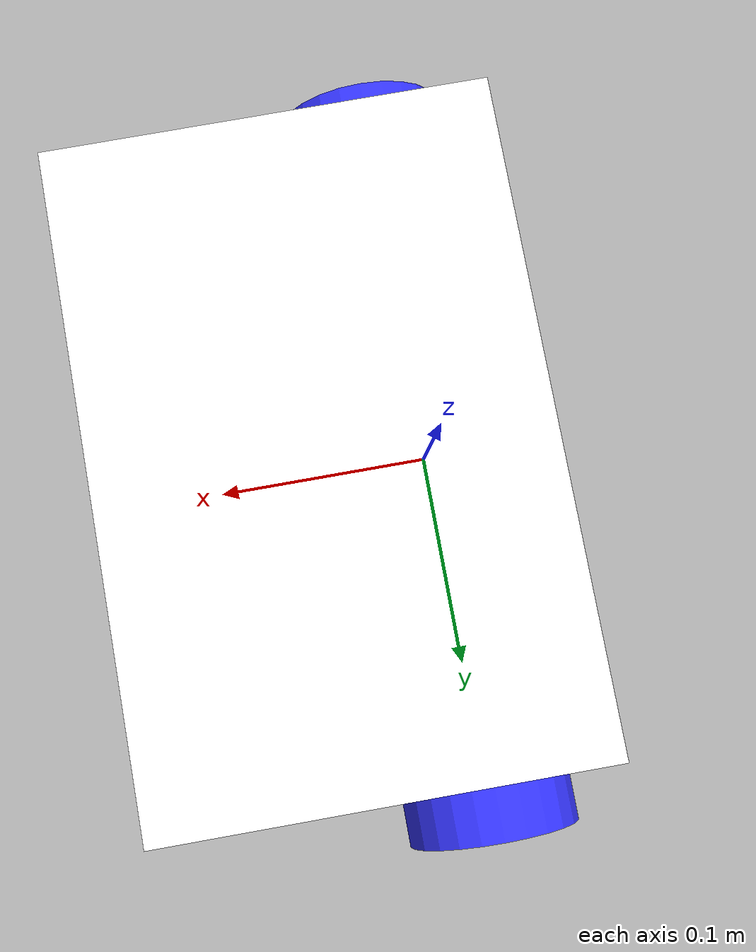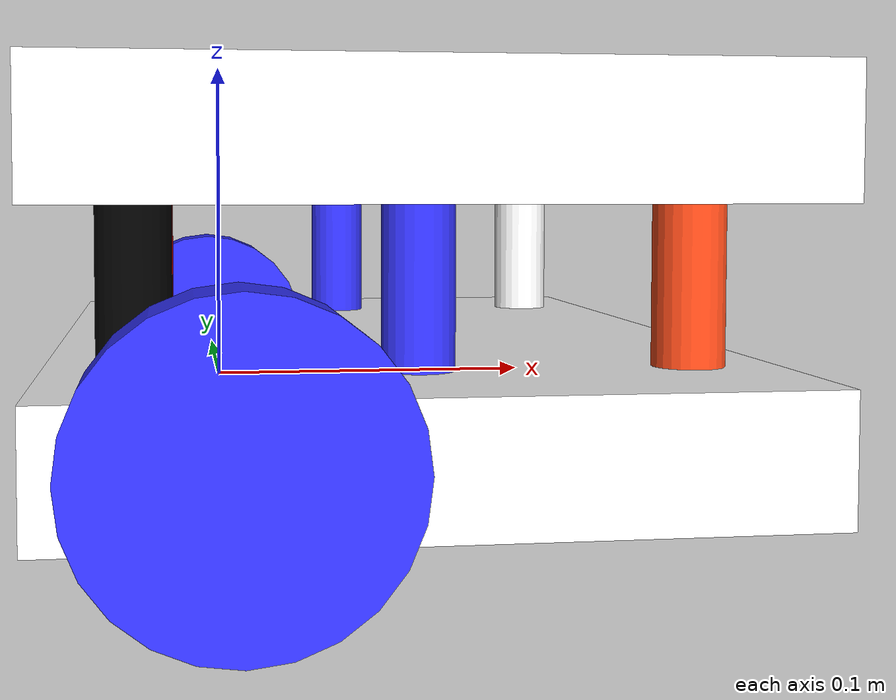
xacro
<?xml version="1.0"?>
<robot xmlns:xacro="http://www.ros.org/wiki/xacro">

    <xacro:include filename="inertial_macros.xacro"/>
    <xacro:include filename="vertical_post.xacro"/>

    <!-- Left Cylinder-->
    <xacro:vertical_post name="post1" x="0.075" y="-0.099" z="-0.123" color="black"/>
    <xacro:vertical_post name="post2" x="0.150" y="-0.099" z="-0.123" color="blue"/>
    <xacro:vertical_post name="post3" x="0.225" y="-0.099" z="-0.123" color="orange"/>

    <!-- Right Cylinder-->
    <xacro:vertical_post name="post4" x="0.075" y="0.099" z="-0.123" color="red"/>
    <xacro:vertical_post name="post5" x="0.150" y="0.099" z="-0.123" color="blue"/>
    <xacro:vertical_post name="post6" x="0.225" y="0.099" z="-0.123" color="white"/>

    <material name="white">
        <color rgba="1 1 1 1"/>
    </material>

    <material name="orange">
        <color rgba="1 0.3 0.1 1"/>
    </material>

    <material name="blue">
        <color rgba="0.2 0.2 1 1"/>
    </material>

    <material name="black">
        <color rgba="0 0 0 1"/>
    </material>

    <material name="red">
        <color rgba="1.0 0.0 0.0 1.0"/>
    </material>

    <!-- Base Link-->
    <link name="base_link">

    </link>

    <joint name="chassis_joint" type="fixed">
        <parent link="base_link"/>
        <child link="chassis"/>
        <origin xyz="-0.1 0.0 0.0"/>
    </joint>

    <!-- Chassis Link-->
    <link name ="chassis">
        <visual>
            <origin xyz="0.15 0 0.075"/>
            <geometry>
                <box size="0.2 0.3 0.035"/>
            </geometry>
            <material name="white">
            </material>
        </visual>
        <collision>
            <origin xyz="0.15 0 0.075"/>
            <geometry>
                <box size="0.2 0.3 0.035"/>
            </geometry>
        </collision>

        <xacro:inertial_box mass="0.1" x="0.2" y="0.3" z="0.035">
            <origin xyz="0.15 0.0 0.075" rpy="0.0 0.0 0.0"/>
        </xacro:inertial_box>

        <visual>
            <origin xyz="0.15 0.0 -0.005"/>
            <geometry>
                <box size="0.2 0.3 0.035"/>
            </geometry>
            <material name="white">
            </material>
        </visual>
        <collision>
            <origin xyz="0.15 0.0 -0.005"/>
            <geometry>
                <box size="0.2 0.3 0.035"/>
            </geometry>
        </collision>
    </link>

    <gazebo reference="chassis">
        <material>
            Gazebo/White
        </material>
    </gazebo>

    <!-- Left Wheel link-->
     <joint name="left_wheel_link" type="continuous">
        <parent link="base_link"/>
        <child link="left_wheel"/>
        <origin xyz = "0 0.165 0" rpy="-${pi/2} 0.0 0.0"/>
        <axis xyz="0.0 0.0 1"/>
     </joint>

     <link name="left_wheel">
        <visual>
            <geometry>
                <cylinder radius="0.04" length="0.03"/>
            </geometry>
            <material name="blue">
            </material>
        </visual>
           <collision>
            <geometry>
                <cylinder radius="0.04" length="0.03"/>
            </geometry>
        </collision>
        <xacro:inertial_cylinder mass="0.1" length="0.03" radius="0.04">
            <origin xyz="0.0 0.0 0.0" rpy="0.0 0.0 0.0"/>
        </xacro:inertial_cylinder>
     </link>

      <gazebo reference="left_wheel">
        <material>
            Gazebo/Blue
        </material>
    </gazebo>

     <!-- Right Wheel link-->
     <joint name="right_wheel_link" type="continuous">
        <parent link="base_link"/>
        <child link="right_wheel"/>
        <origin xyz = "0 -0.165 0" rpy="${pi/2} 0.0 0.0"/>
        <axis xyz="0.0 0.0 -1"/>
     </joint>

     <link name="right_wheel">
        <visual>
            <geometry>
                <cylinder radius="0.04" length="0.03"/>
            </geometry>
            <material name="blue">
            </material>
        </visual>
        <collision>
            <geometry>
                <cylinder radius="0.04" length="0.03"/>
            </geometry>
        </collision>
        <xacro:inertial_cylinder mass="0.1" length="0.03" radius="0.04">
            <origin xyz="0.0 0.0 0.0" rpy="0.0 0.0 0.0"/>
        </xacro:inertial_cylinder>
     </link>

      <gazebo reference="right_wheel">
        <material>
            Gazebo/Blue
        </material>
    </gazebo>

     <!-- Caster Wheel Link-->
      <joint name ="caster_wheel_link" type = "fixed">
        <parent link="chassis"/>
        <child link="caster_wheel"/>
        <origin xyz = "0.23 0 -0.02"/>
      </joint>

      <link name="caster_wheel">
        <visual>
            <geometry>
                <sphere radius="0.02"/>
            </geometry>
            <material name="black">
            </material>
        </visual>
           <collision>
            <geometry>
                <sphere radius="0.02"/>
            </geometry>
        </collision>
        <xacro:inertial_sphere mass="1" radius="0.02">
            <origin xyz="0.0 0.0 0.0" rpy="0.0 0.0 0.0"/>
        </xacro:inertial_sphere>
      </link>

       <gazebo reference="caster_wheel">
        <material>
            Gazebo/Black
        </material>
        <mu1 value="0.1"></mu1>
        <mu2 value="0.1"></mu2>
    </gazebo>
</robot>

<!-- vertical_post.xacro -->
<robot xmlns:xacro="http://www.ros.org/wiki/xacro">

    <xacro:macro name="vertical_post" params="name x y z color">
        <link name="${name}">
            <visual>
                <origin xyz="0 0 0.15"/>
                <mass value="0.001"/>
                <geometry>
                    <cylinder length="0.08" radius="0.01"/>
                </geometry>
                <material name="${color}"/>
            </visual>
            <collision>
                <origin xyz="0 0 0.15"/>
                <geometry>
                    <cylinder length="0.08" radius="0.01"/>
                </geometry>
            </collision>
        </link>

        <joint name="chassis_to_${name}" type="fixed">
            <parent link="chassis"/>
            <child link="${name}"/>
            <origin xyz="${x} ${y} ${z}" rpy="0 0 0"/>
        </joint>

        <gazebo reference="${name}">
            <material>
                Gazebo/${color}
            </material>
        </gazebo>
    </xacro:macro>
</robot>
